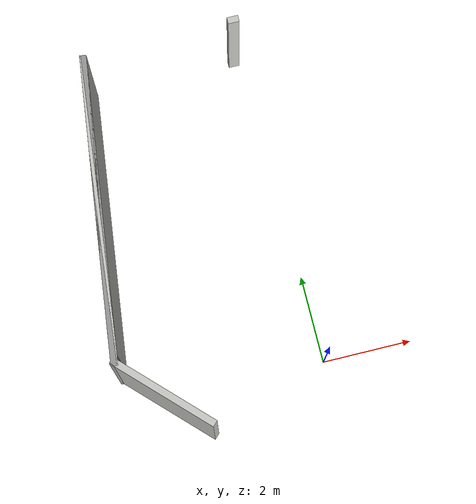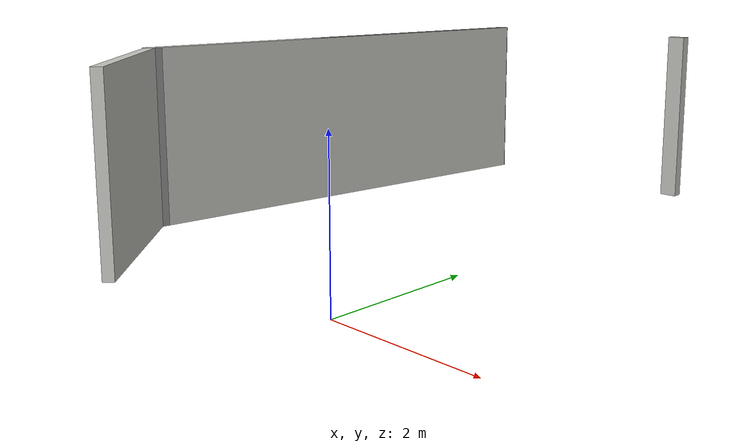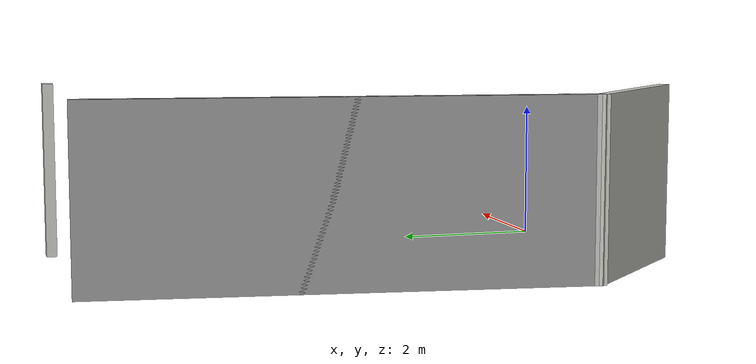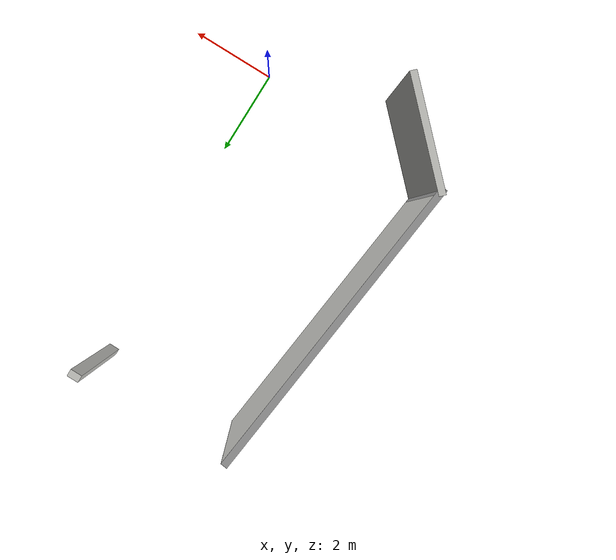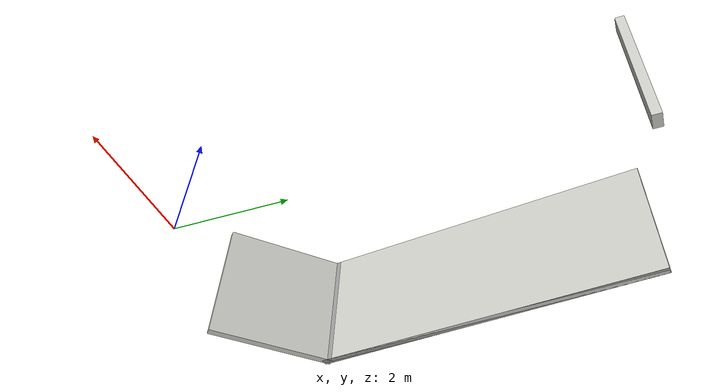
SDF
<?xml version='1.0'?>
<sdf version='1.6'>
  <model name='sim.sdf'>
    <pose frame=''>-2.32009 3.21847 0 0 -0 0</pose>
    <link name='Wall_15'>
      <collision name='Wall_15_Collision'>
        <geometry>
          <box>
            <size>0.25 0.15 2.5</size>
          </box>
        </geometry>
        <pose frame=''>0 0 1.25 0 -0 0</pose>
      </collision>
      <visual name='Wall_15_Visual'>
        <pose frame=''>0 0 1.25 0 -0 0</pose>
        <geometry>
          <box>
            <size>0.25 0.15 2.5</size>
          </box>
        </geometry>
        <material>
          <script>
            <uri>file://media/materials/scripts/gazebo.material</uri>
            <name>Gazebo/CeilingTiled</name>
          </script>
          <ambient>0 0 0 1</ambient>
        </material>
        <meta>
          <layer>0</layer>
        </meta>
      </visual>
      <pose frame=''>2.07009 4.23153 0 0 -0 0</pose>
    </link>
    <link name='Wall_16'>
      <collision name='Wall_16_Collision'>
        <geometry>
          <box>
            <size>2.5 0.15 2.5</size>
          </box>
        </geometry>
        <pose frame=''>0 0 1.25 0 -0 0</pose>
      </collision>
      <visual name='Wall_16_Visual'>
        <pose frame=''>0 0 1.25 0 -0 0</pose>
        <geometry>
          <box>
            <size>2.5 0.15 2.5</size>
          </box>
        </geometry>
        <material>
          <script>
            <uri>file://media/materials/scripts/gazebo.material</uri>
            <name>Gazebo/CeilingTiled</name>
          </script>
          <ambient>1 1 1 1</ambient>
        </material>
        <meta>
          <layer>0</layer>
        </meta>
      </visual>
      <pose frame=''>-1.25818 -3.36962 0 0 -0 -0.785398</pose>
    </link>
    <link name='Wall_18'>
      <collision name='Wall_18_Collision'>
        <geometry>
          <box>
            <size>6.86055 0.15 2.5</size>
          </box>
        </geometry>
        <pose frame=''>0 0 1.25 0 -0 0</pose>
      </collision>
      <visual name='Wall_18_Visual'>
        <pose frame=''>0 0 1.25 0 -0 0</pose>
        <geometry>
          <box>
            <size>6.86055 0.15 2.5</size>
          </box>
        </geometry>
        <material>
          <script>
            <uri>file://media/materials/scripts/gazebo.material</uri>
            <name>Gazebo/Grey</name>
          </script>
          <ambient>1 1 1 1</ambient>
        </material>
        <meta>
          <layer>0</layer>
        </meta>
      </visual>
      <pose frame=''>-1.70189 0.784103 0 0 -0 1.45516</pose>
    </link>
    <link name='Wall_19'>
      <collision name='Wall_19_Collision'>
        <geometry>
          <box>
            <size>6.86055 0.15 2.5</size>
          </box>
        </geometry>
        <pose frame=''>0 0 1.25 0 -0 0</pose>
      </collision>
      <visual name='Wall_19_Visual'>
        <pose frame=''>0 0 1.25 0 -0 0</pose>
        <geometry>
          <box>
            <size>6.86055 0.15 2.5</size>
          </box>
        </geometry>
        <material>
          <script>
            <uri>file://media/materials/scripts/gazebo.material</uri>
            <name>Gazebo/Grey</name>
          </script>
          <ambient>1 1 1 1</ambient>
        </material>
        <meta>
          <layer>0</layer>
        </meta>
      </visual>
      <pose frame=''>-1.70189 0.784103 0 0 -0 -1.68643</pose>
    </link>
    <link name='Wall_20'>
      <collision name='Wall_20_Collision'>
        <geometry>
          <box>
            <size>6.86055 0.15 2.5</size>
          </box>
        </geometry>
        <pose frame=''>0 0 1.25 0 -0 0</pose>
      </collision>
      <visual name='Wall_20_Visual'>
        <pose frame=''>0 0 1.25 0 -0 0</pose>
        <geometry>
          <box>
            <size>6.86055 0.15 2.5</size>
          </box>
        </geometry>
        <material>
          <script>
            <uri>file://media/materials/scripts/gazebo.material</uri>
            <name>Gazebo/Grey</name>
          </script>
          <ambient>1 1 1 1</ambient>
        </material>
        <meta>
          <layer>0</layer>
        </meta>
      </visual>
      <pose frame=''>-1.70189 0.784103 0 0 -0 1.45516</pose>
    </link>
    <link name='Wall_21'>
      <collision name='Wall_21_Collision'>
        <geometry>
          <box>
            <size>6.85062 0.15 2.5</size>
          </box>
        </geometry>
        <pose frame=''>0 0 1.25 0 -0 0</pose>
      </collision>
      <visual name='Wall_21_Visual'>
        <pose frame=''>0 0 1.25 0 -0 0</pose>
        <geometry>
          <box>
            <size>6.85062 0.15 2.5</size>
          </box>
        </geometry>
        <material>
          <script>
            <uri>file://media/materials/scripts/gazebo.material</uri>
            <name>Gazebo/CeilingTiled</name>
          </script>
          <ambient>1 1 1 1</ambient>
        </material>
        <meta>
          <layer>0</layer>
        </meta>
      </visual>
      <pose frame=''>-1.70189 0.779102 0 0 -0 -1.68661</pose>
    </link>
    <static>1</static>
  </model>
</sdf>
